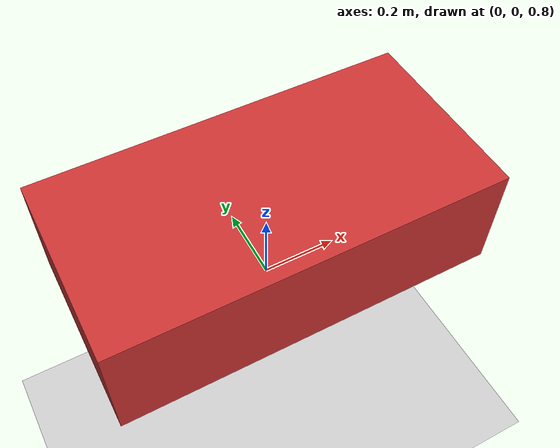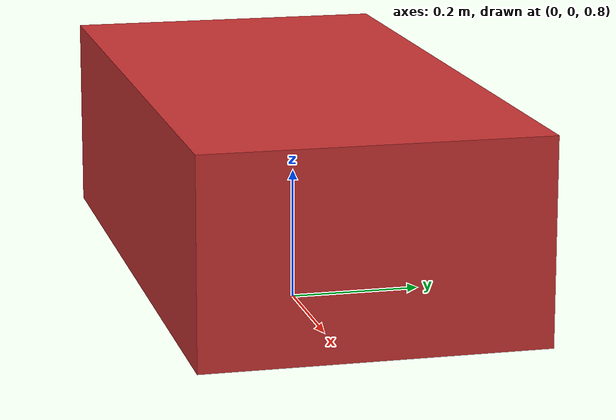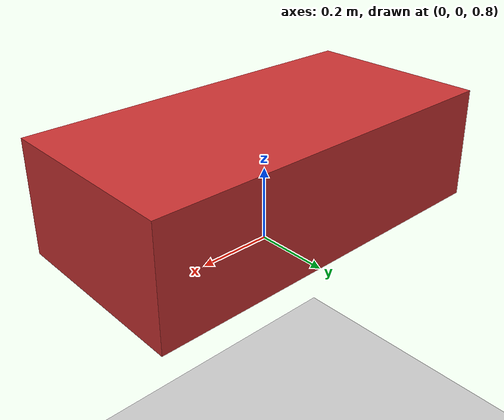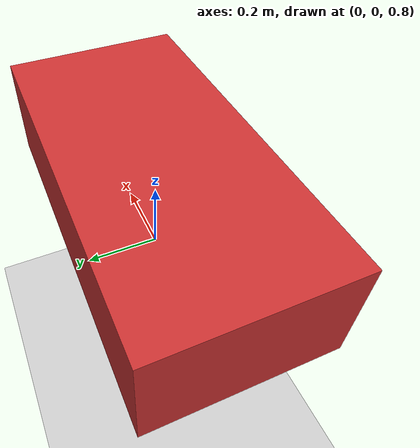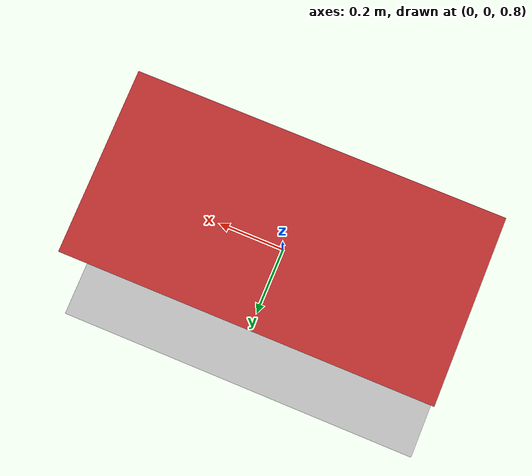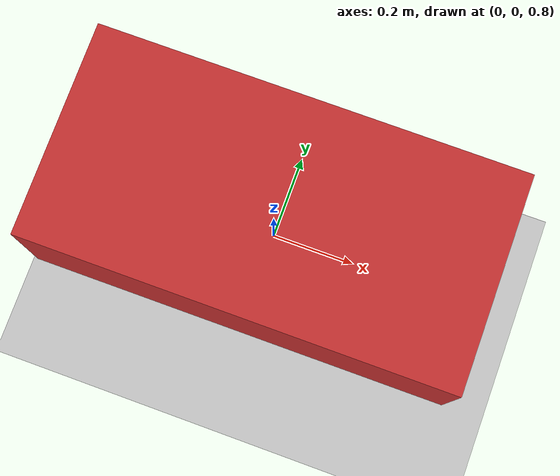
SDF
<sdf version="1.4">
<world name="world1">
    <include>
      <uri>ground</uri>
    </include>
    <include>
      <uri>jake</uri>
      <pose>0 0 1 0 0 0</pose>
    </include>
    <physics name="1ms" type="ignored">
            <max_step_size>0.001</max_step_size>
            <real_time_factor>1.0</real_time_factor>
        </physics>
        <plugin
            filename="gz-sim-physics-system"
            name="gz::sim::systems::Physics">
        </plugin>
        <plugin
            filename="gz-sim-user-commands-system"
            name="gz::sim::systems::UserCommands">
        </plugin>
        <plugin
            filename="gz-sim-scene-broadcaster-system"
            name="gz::sim::systems::SceneBroadcaster">
        </plugin>

        <light type="directional" name="sun">
            <cast_shadows>true</cast_shadows>
            <pose>0 0 10 0 0 0</pose>
            <diffuse>0.8 0.8 0.8 1</diffuse>
            <specular>0.2 0.2 0.2 1</specular>
            <attenuation>
                <range>1000</range>
                <constant>0.9</constant>
                <linear>0.01</linear>
                <quadratic>0.001</quadratic>
            </attenuation>
            <direction>-0.5 0.1 -0.9</direction>
        </light>
  </world>
</sdf>

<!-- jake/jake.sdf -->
<sdf version="1.5">
  <model name="jake">
    <!-- Body of the robot -->
    <link name="body">
      <visual name="body_visual">
        <geometry>
          <box>
            <size>1 0.5 0.3</size> <!-- Length x Width x Height -->
          </box>
        </geometry>
        <material>
          <ambient>0.8 0.2 0.2 1</ambient> <!-- Color Red -->
        </material>
      </visual>
      <collision name="body_collision">
        <geometry>
          <box>
            <size>1 0.5 0.3</size> <!-- Length x Width x Height -->
          </box>
        </geometry>
      </collision>
      <inertial>
        <mass>5.0</mass>
        <inertia>
          <ixx>0.1</ixx>
          <iyy>0.1</iyy>
          <izz>0.2</izz>
        </inertia>
      </inertial>
    </link>

    <!-- Actuated wheels -->
    <!-- Front left wheel -->
    <link name="fl_wheel">
      <visual name="fl_wheel_visual">
        <geometry>
          <cylinder>
            <radius>0.1</radius>
            <length>0.05</length>
          </cylinder>
        </geometry>
      </visual>
      <collision name="fl_wheel_collision">
        <geometry>
          <cylinder>
            <radius>0.1</radius>
            <length>0.05</length>
          </cylinder>
        </geometry>
      </collision>
      <inertial>
        <mass>0.5</mass>
        <inertia>
          <ixx>0.002</ixx>
          <iyy>0.002</iyy>
          <izz>0.004</izz>
        </inertia>
      </inertial>
    </link>

    <joint name="fl_wheel_joint" type="revolute">
      <parent>body</parent>
      <child>fl_wheel</child>
      <axis>
        <xyz>0 1 0</xyz> <!-- Revolute axis (rotation around Y-axis) -->
      </axis>
      <limit>
        <lower>-1.0</lower>
        <upper>1.0</upper>
        <effort>10</effort>
        <velocity>1.0</velocity>
      </limit>
    </joint>

    <!-- Front right wheel -->
    <link name="fr_wheel">
      <visual name="fr_wheel_visual">
        <geometry>
          <cylinder>
            <radius>0.1</radius>
            <length>0.05</length>
          </cylinder>
        </geometry>
      </visual>
      <collision name="fr_wheel_collision">
        <geometry>
          <cylinder>
            <radius>0.1</radius>
            <length>0.05</length>
          </cylinder>
        </geometry>
      </collision>
      <inertial>
        <mass>0.5</mass>
        <inertia>
          <ixx>0.002</ixx>
          <iyy>0.002</iyy>
          <izz>0.004</izz>
        </inertia>
      </inertial>
    </link>

    <joint name="fr_wheel_joint" type="revolute">
      <parent>body</parent>
      <child>fr_wheel</child>
      <axis>
        <xyz>0 1 0</xyz> <!-- Revolute axis (rotation around Y-axis) -->
      </axis>
      <limit>
        <lower>-1.0</lower>
        <upper>1.0</upper>
        <effort>10</effort>
        <velocity>1.0</velocity>
      </limit>
    </joint>

    <!-- Passive wheels -->
    <!-- Rear left wheel -->
    <link name="rl_wheel">
      <visual name="rl_wheel_visual">
        <geometry>
          <cylinder>
            <radius>0.1</radius>
            <length>0.05</length>
          </cylinder>
        </geometry>
      </visual>
      <collision name="rl_wheel_collision">
        <geometry>
          <cylinder>
            <radius>0.1</radius>
            <length>0.05</length>
          </cylinder>
        </geometry>
      </collision>
      <inertial>
        <mass>0.5</mass>
        <inertia>
          <ixx>0.002</ixx>
          <iyy>0.002</iyy>
          <izz>0.004</izz>
        </inertia>
      </inertial>
    </link>

    <joint name="rl_wheel_joint" type="fixed">
      <parent>body</parent>
      <child>rl_wheel</child>
      <pose>0.5 0.25 0.0 0 0 0</pose> <!-- Position relative to body -->
    </joint>

    <!-- Rear right wheel -->
    <link name="rr_wheel">
      <visual name="rr_wheel_visual">
        <geometry>
          <cylinder>
            <radius>0.1</radius>
            <length>0.05</length>
          </cylinder>
        </geometry>
      </visual>
      <collision name="rr_wheel_collision">
        <geometry>
          <cylinder>
            <radius>0.1</radius>
            <length>0.05</length>
          </cylinder>
        </geometry>
      </collision>
      <inertial>
        <mass>0.5</mass>
        <inertia>
          <ixx>0.002</ixx>
          <iyy>0.002</iyy>
          <izz>0.004</izz>
        </inertia>
      </inertial>
    </link>

    <joint name="rr_wheel_joint" type="fixed">
      <parent>body</parent>
      <child>rr_wheel</child>
      <pose>0.5 -0.25 0.0 0 0 0</pose> <!-- Position relative to body -->
    </joint>

  </model>
</sdf>
